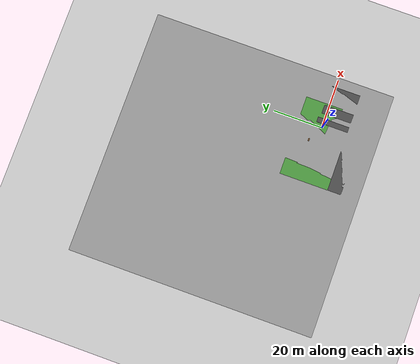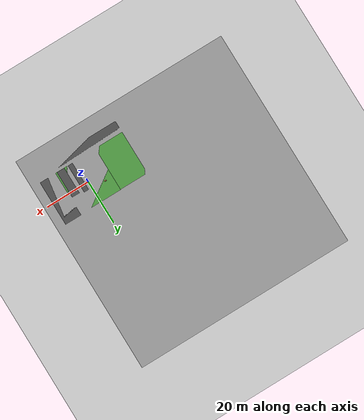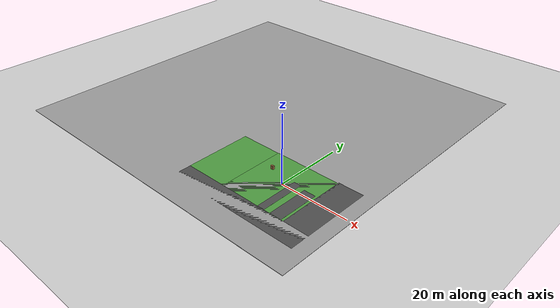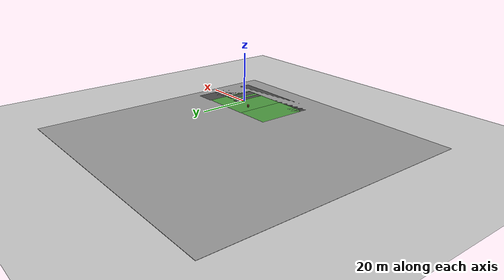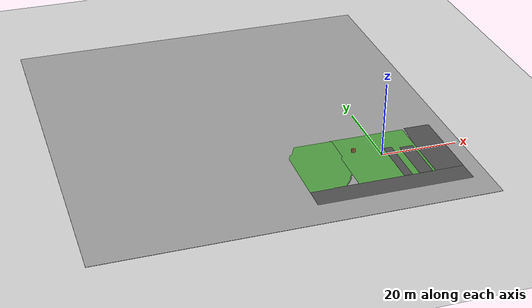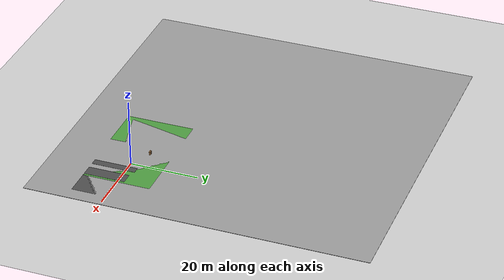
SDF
<sdf version="1.6">
 <world name="default">
  <light name="sun" type="directional">
   <pose>0 0 10 0 -0 0</pose>
   <diffuse>0.8 0.8 0.8 1</diffuse>
   <specular>0.1 0.1 0.1 1</specular>
   <attenuation>
    <range>1000</range>
    <constant>0.9</constant>
    <linear>0.01</linear>
    <quadratic>0.001</quadratic>
   </attenuation>
   <direction>-0.5 0.5 -1</direction>
  </light>
  <model name="ground_plane">
   <static>1</static>
   <link name="link">
    <collision name="collision">
     <geometry><plane><normal>0 0 1</normal><size>100 100</size></plane></geometry>
     <surface><friction><ode><mu>100</mu><mu2>50</mu2></ode></friction></surface>
    </collision>
    <visual name="visual">
     <cast_shadows>0</cast_shadows>
     <geometry><plane><normal>0 0 1</normal><size>100 100</size></plane></geometry>
     <material>
      <script><uri>file://media/materials/scripts/gazebo.material</uri><name>Gazebo/Grey</name></script>
     </material>
    </visual>
   </link>
  </model>
  <gravity>0 0 -9.8</gravity>
  <magnetic_field>6e-06 2.3e-05 -4.2e-05</magnetic_field>
  <atmosphere type="adiabatic"/>
  <physics name="default_physics" default="0" type="ode">
   <max_step_size>0.001</max_step_size>
   <real_time_factor>1</real_time_factor>
   <real_time_update_rate>1000</real_time_update_rate>
  </physics>
  <scene><ambient>0.4 0.4 0.4 1</ambient><background>0.7 0.7 0.7 1</background><shadows>1</shadows></scene>
  <spherical_coordinates>
   <surface_model>EARTH_WGS84</surface_model>
   <latitude_deg>0</latitude_deg>
   <longitude_deg>0</longitude_deg>
   <elevation>0</elevation>
   <heading_deg>0</heading_deg>
  </spherical_coordinates>
  <model name="grass_plane">
   <static>1</static>
   <link name="link">
    <collision name="collision"><geometry><box><size>20 20 0.1</size></box></geometry></collision>
    <visual name="visual">
     <cast_shadows>0</cast_shadows>
     <geometry><box><size>20 20 0.1</size></box></geometry>
     <material>
      <script>
       <uri>model://grass_plane/materials/scripts</uri>
       <uri>model://grass_plane/materials/textures</uri>
       <name>vrc/grass</name>
      </script>
     </material>
    </visual>
   </link>
   <pose>-0.261401 -0.233537 0 0 -0 0</pose>
  </model>
  <model name="asphalt_plane_0">
   <static>1</static>
   <link name="link">
    <collision name="collision"><geometry><box><size>7.49808 20.3146 0.1</size></box></geometry></collision>
    <visual name="visual">
     <cast_shadows>0</cast_shadows>
     <geometry><box><size>7.49808 20.3146 0.1</size></box></geometry>
     <material>
      <script>
       <uri>model://asphalt_plane/materials/scripts</uri>
       <uri>model://asphalt_plane/materials/textures</uri>
       <name>vrc/asphalt</name>
      </script>
     </material>
    </visual>
   </link>
   <pose>13.4965 -0.032961 0 0 -0 0</pose>
  </model>
  <model name="grass_plane_0">
   <static>1</static>
   <link name="link">
    <collision name="collision"><geometry><box><size>13.0296 20 0.1</size></box></geometry></collision>
    <visual name="visual">
     <cast_shadows>0</cast_shadows>
     <geometry><box><size>13.0296 20 0.1</size></box></geometry>
     <material>
      <script>
       <uri>model://grass_plane/materials/scripts</uri>
       <uri>model://grass_plane/materials/textures</uri>
       <name>vrc/grass</name>
      </script>
     </material>
    </visual>
   </link>
   <pose>-16.196 -0.352816 0 0 -0 0</pose>
  </model>
  <model name="ground_plane_0">
   <static>1</static>
   <link name="link">
    <collision name="collision">
     <geometry><plane><normal>0 0 1</normal><size>100 100</size></plane></geometry>
     <surface><friction><ode><mu>100</mu><mu2>50</mu2></ode></friction></surface>
    </collision>
    <visual name="visual">
     <cast_shadows>0</cast_shadows>
     <geometry><plane><normal>0 0 1</normal><size>100 100</size></plane></geometry>
     <material>
      <script><uri>file://media/materials/scripts/gazebo.material</uri><name>Gazebo/Grey</name></script>
     </material>
    </visual>
   </link>
   <pose>-28.6988 27.0596 0 0 -0 0</pose>
  </model>
  <model name="asphalt_plane">
   <static>1</static>
   <link name="link">
    <collision name="collision"><geometry><box><size>39.8942 5.49918 0.1</size></box></geometry></collision>
    <visual name="visual">
     <cast_shadows>0</cast_shadows>
     <geometry><box><size>39.8942 5.49918 0.1</size></box></geometry>
     <material>
      <script>
       <uri>model://asphalt_plane/materials/scripts</uri>
       <uri>model://asphalt_plane/materials/textures</uri>
       <name>vrc/asphalt</name>
      </script>
     </material>
    </visual>
   </link>
   <pose>-2.73146 -12.9364 0 0 -0 0</pose>
  </model>
  <model name="asphalt_plane_3">
   <static>1</static>
   <link name="link">
    <collision name="collision"><geometry><box><size>2.14664 12.9395 0.121751</size></box></geometry></collision>
    <visual name="visual">
     <cast_shadows>0</cast_shadows>
     <geometry><box><size>2.14664 12.9395 0.121751</size></box></geometry>
     <material>
      <script>
       <uri>model://asphalt_plane/materials/scripts</uri>
       <uri>model://asphalt_plane/materials/textures</uri>
       <name>vrc/asphalt</name>
      </script>
     </material>
    </visual>
   </link>
   <pose>2.63894 -3.69985 0 0 -0 0</pose>
  </model>
  <model name="asphalt_plane_4">
   <static>1</static>
   <link name="link">
    <collision name="collision"><geometry><box><size>3.4976 12.1405 0.11832</size></box></geometry></collision>
    <visual name="visual">
     <cast_shadows>0</cast_shadows>
     <geometry><box><size>3.4976 12.1405 0.11832</size></box></geometry>
     <material>
      <script>
       <uri>model://asphalt_plane/materials/scripts</uri>
       <uri>model://asphalt_plane/materials/textures</uri>
       <name>vrc/asphalt</name>
      </script>
     </material>
    </visual>
   </link>
   <pose>7.29257 -4.11629 0 0 -0 0</pose>
  </model>
  <model name="cabinet">
   <static>1</static>
   <link name="cabinet_bottom_plate">
    <inertial>
     <pose>0 0 -1 0 -0 0</pose>
     <inertia><ixx>2.05</ixx><ixy>0</ixy><ixz>0</ixz><iyy>2.05</iyy><iyz>0</iyz><izz>2.05</izz></inertia>
     <mass>25</mass>
    </inertial>
    <collision name="cabinet_bottom_plate_geom">
     <pose>0 0 0.01 0 -0 0</pose>
     <geometry><box><size>0.45 0.45 0.02</size></box></geometry>
    </collision>
    <visual name="cabinet_bottom_plate_geom_visual">
     <pose>0 0 0.01 0 -0 0</pose>
     <geometry><box><size>0.45 0.45 0.02</size></box></geometry>
     <material>
      <script><uri>file://media/materials/scripts/gazebo.material</uri><name>Gazebo/Wood</name></script>
     </material>
    </visual>
    <collision name="cabinet_bottom_plate_geom_cabinet_back_plate">
     <pose>0.235 0 0.51 0 -0 0</pose>
     <geometry><box><size>0.02 0.45 1.02</size></box></geometry>
    </collision>
    <visual name="cabinet_bottom_plate_geom_cabinet_back_plate_visual">
     <pose>0.235 0 0.51 0 -0 0</pose>
     <geometry><box><size>0.02 0.45 1.02</size></box></geometry>
     <material>
      <script><uri>file://media/materials/scripts/gazebo.material</uri><name>Gazebo/Wood</name></script>
     </material>
    </visual>
    <collision name="cabinet_bottom_plate_geom_cabinet_left_plate">
     <pose>0 0.235 0.51 0 -0 0</pose>
     <geometry><box><size>0.45 0.02 1.02</size></box></geometry>
    </collision>
    <visual name="cabinet_bottom_plate_geom_cabinet_left_plate_visual">
     <pose>0 0.235 0.51 0 -0 0</pose>
     <geometry><box><size>0.45 0.02 1.02</size></box></geometry>
     <material>
      <script><uri>file://media/materials/scripts/gazebo.material</uri><name>Gazebo/Wood</name></script>
     </material>
    </visual>
    <collision name="cabinet_bottom_plate_geom_cabinet_middle_plate">
     <pose>0 0 0.51 0 -0 0</pose>
     <geometry><box><size>0.45 0.45 0.02</size></box></geometry>
    </collision>
    <visual name="cabinet_bottom_plate_geom_cabinet_middle_plate_visual">
     <pose>0 0 0.51 0 -0 0</pose>
     <geometry><box><size>0.45 0.45 0.02</size></box></geometry>
     <material>
      <script><uri>file://media/materials/scripts/gazebo.material</uri><name>Gazebo/Wood</name></script>
     </material>
    </visual>
    <collision name="cabinet_bottom_plate_geom_cabinet_right_plate">
     <pose>0 -0.235 0.51 0 -0 0</pose>
     <geometry><box><size>0.45 0.02 1.02</size></box></geometry>
    </collision>
    <visual name="cabinet_bottom_plate_geom_cabinet_right_plate_visual">
     <pose>0 -0.235 0.51 0 -0 0</pose>
     <geometry><box><size>0.45 0.02 1.02</size></box></geometry>
     <material>
      <script><uri>file://media/materials/scripts/gazebo.material</uri><name>Gazebo/Wood</name></script>
     </material>
    </visual>
    <collision name="cabinet_bottom_plate_geom_cabinet_top_plate">
     <pose>0 0 1.01 0 -0 0</pose>
     <geometry><box><size>0.45 0.45 0.02</size></box></geometry>
    </collision>
    <visual name="cabinet_bottom_plate_geom_cabinet_top_plate_visual">
     <pose>0 0 1.01 0 -0 0</pose>
     <geometry><box><size>0.45 0.45 0.02</size></box></geometry>
     <material>
      <script><uri>file://media/materials/scripts/gazebo.material</uri><name>Gazebo/Wood</name></script>
     </material>
    </visual>
   </link>
   <pose>-6.08857 3.30226 0 0 -0 0</pose>
  </model>
  <model name="cabinet_0">
   <static>1</static>
   <link name="cabinet_bottom_plate">
    <inertial>
     <pose>0 0 -1 0 -0 0</pose>
     <inertia><ixx>2.05</ixx><ixy>0</ixy><ixz>0</ixz><iyy>2.05</iyy><iyz>0</iyz><izz>2.05</izz></inertia>
     <mass>25</mass>
    </inertial>
    <collision name="cabinet_bottom_plate_geom">
     <pose>0 0 0.01 0 -0 0</pose>
     <geometry><box><size>0.45 0.45 0.02</size></box></geometry>
    </collision>
    <visual name="cabinet_bottom_plate_geom_visual">
     <pose>0 0 0.01 0 -0 0</pose>
     <geometry><box><size>0.45 0.45 0.02</size></box></geometry>
     <material>
      <script><uri>file://media/materials/scripts/gazebo.material</uri><name>Gazebo/Wood</name></script>
     </material>
    </visual>
    <collision name="cabinet_bottom_plate_geom_cabinet_back_plate">
     <pose>0.235 0 0.51 0 -0 0</pose>
     <geometry><box><size>0.02 0.45 1.02</size></box></geometry>
    </collision>
    <visual name="cabinet_bottom_plate_geom_cabinet_back_plate_visual">
     <pose>0.235 0 0.51 0 -0 0</pose>
     <geometry><box><size>0.02 0.45 1.02</size></box></geometry>
     <material>
      <script><uri>file://media/materials/scripts/gazebo.material</uri><name>Gazebo/Wood</name></script>
     </material>
    </visual>
    <collision name="cabinet_bottom_plate_geom_cabinet_left_plate">
     <pose>0 0.235 0.51 0 -0 0</pose>
     <geometry><box><size>0.45 0.02 1.02</size></box></geometry>
    </collision>
    <visual name="cabinet_bottom_plate_geom_cabinet_left_plate_visual">
     <pose>0 0.235 0.51 0 -0 0</pose>
     <geometry><box><size>0.45 0.02 1.02</size></box></geometry>
     <material>
      <script><uri>file://media/materials/scripts/gazebo.material</uri><name>Gazebo/Wood</name></script>
     </material>
    </visual>
    <collision name="cabinet_bottom_plate_geom_cabinet_middle_plate">
     <pose>0 0 0.51 0 -0 0</pose>
     <geometry><box><size>0.45 0.45 0.02</size></box></geometry>
    </collision>
    <visual name="cabinet_bottom_plate_geom_cabinet_middle_plate_visual">
     <pose>0 0 0.51 0 -0 0</pose>
     <geometry><box><size>0.45 0.45 0.02</size></box></geometry>
     <material>
      <script><uri>file://media/materials/scripts/gazebo.material</uri><name>Gazebo/Wood</name></script>
     </material>
    </visual>
    <collision name="cabinet_bottom_plate_geom_cabinet_right_plate">
     <pose>0 -0.235 0.51 0 -0 0</pose>
     <geometry><box><size>0.45 0.02 1.02</size></box></geometry>
    </collision>
    <visual name="cabinet_bottom_plate_geom_cabinet_right_plate_visual">
     <pose>0 -0.235 0.51 0 -0 0</pose>
     <geometry><box><size>0.45 0.02 1.02</size></box></geometry>
     <material>
      <script><uri>file://media/materials/scripts/gazebo.material</uri><name>Gazebo/Wood</name></script>
     </material>
    </visual>
    <collision name="cabinet_bottom_plate_geom_cabinet_top_plate">
     <pose>0 0 1.01 0 -0 0</pose>
     <geometry><box><size>0.45 0.45 0.02</size></box></geometry>
    </collision>
    <visual name="cabinet_bottom_plate_geom_cabinet_top_plate_visual">
     <pose>0 0 1.01 0 -0 0</pose>
     <geometry><box><size>0.45 0.45 0.02</size></box></geometry>
     <material>
      <script><uri>file://media/materials/scripts/gazebo.material</uri><name>Gazebo/Wood</name></script>
     </material>
    </visual>
   </link>
   <pose>-6.53583 3.30319 0 0 -0 3.13725</pose>
  </model>
 </world>
</sdf>
